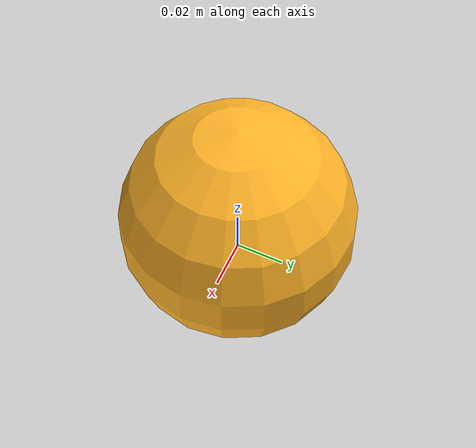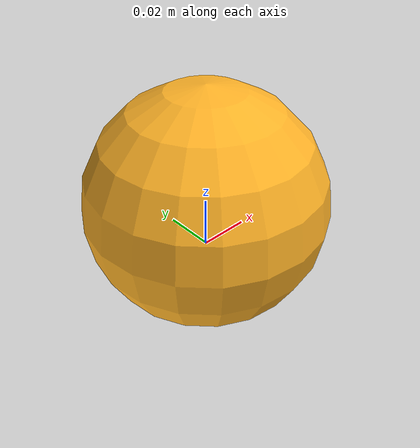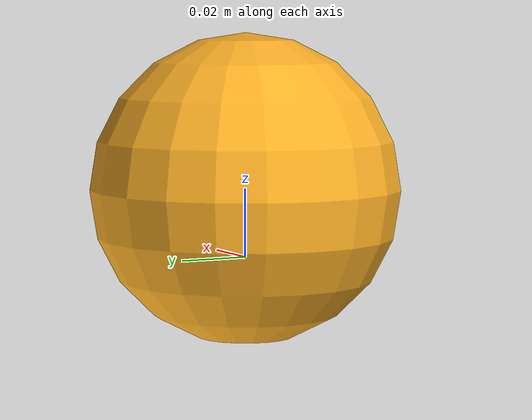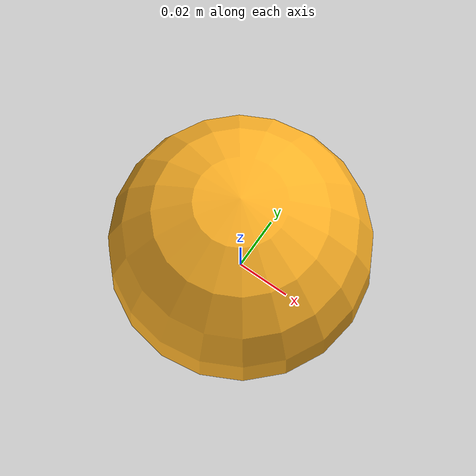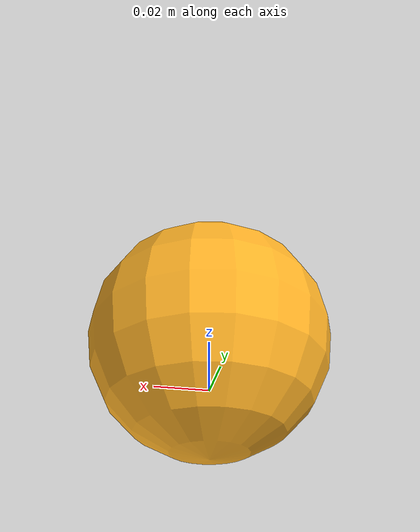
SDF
<?xml version="1.0"?>
<sdf version="1.6">
  <model name="arbusto">
    <static>true</static>
    <link name="base">
      <visual name="semente">
        <pose>0 0 0.02 0 0 0</pose>
        <geometry>
          <sphere><radius>0.045</radius></sphere>
        </geometry>
        <material>
          <ambient>0.8 0.55 0.1 1</ambient>
          <diffuse>1.0 0.7 0.15 1</diffuse>
          <specular>0.3 0.2 0.05 1</specular>
        </material>
      </visual>
    </link>
  </model>
</sdf>
